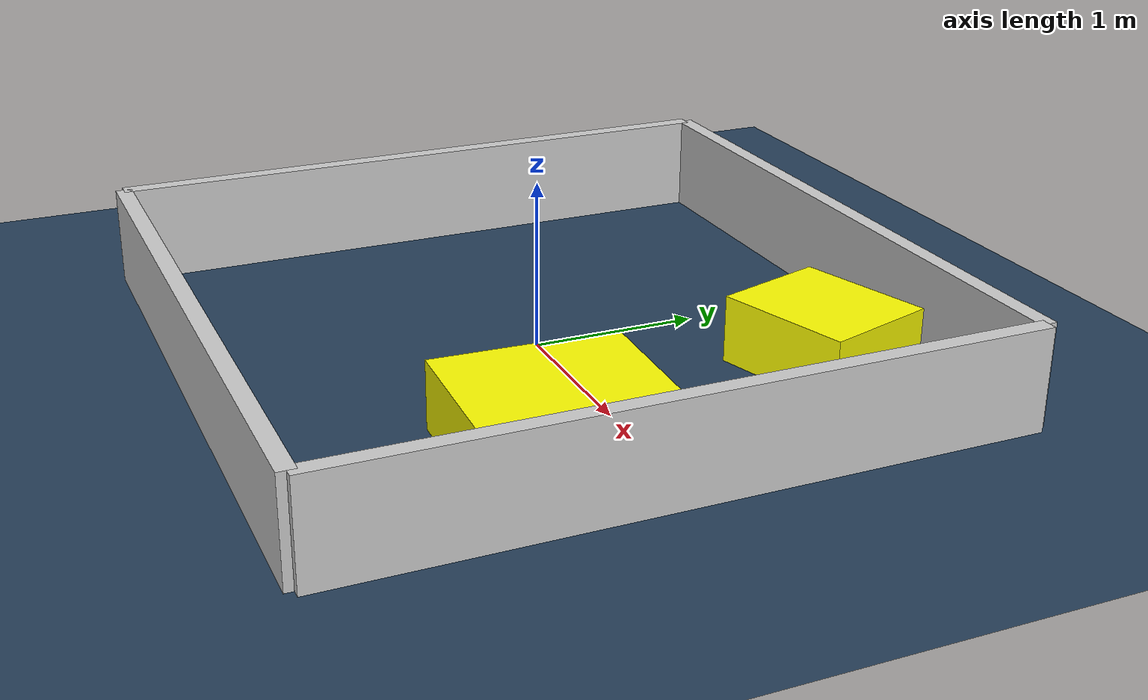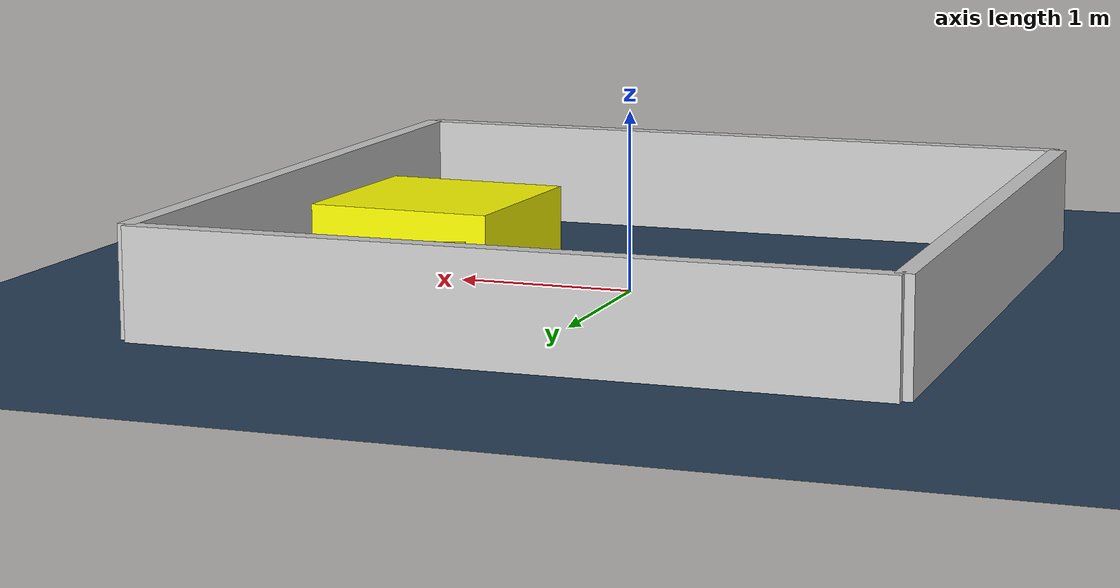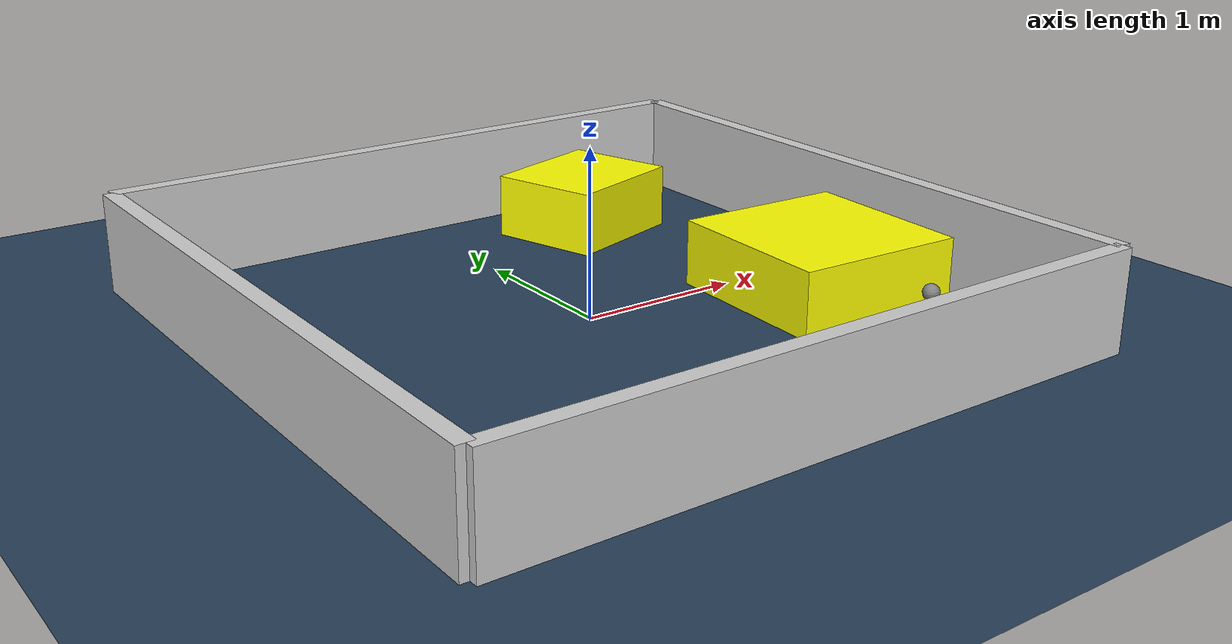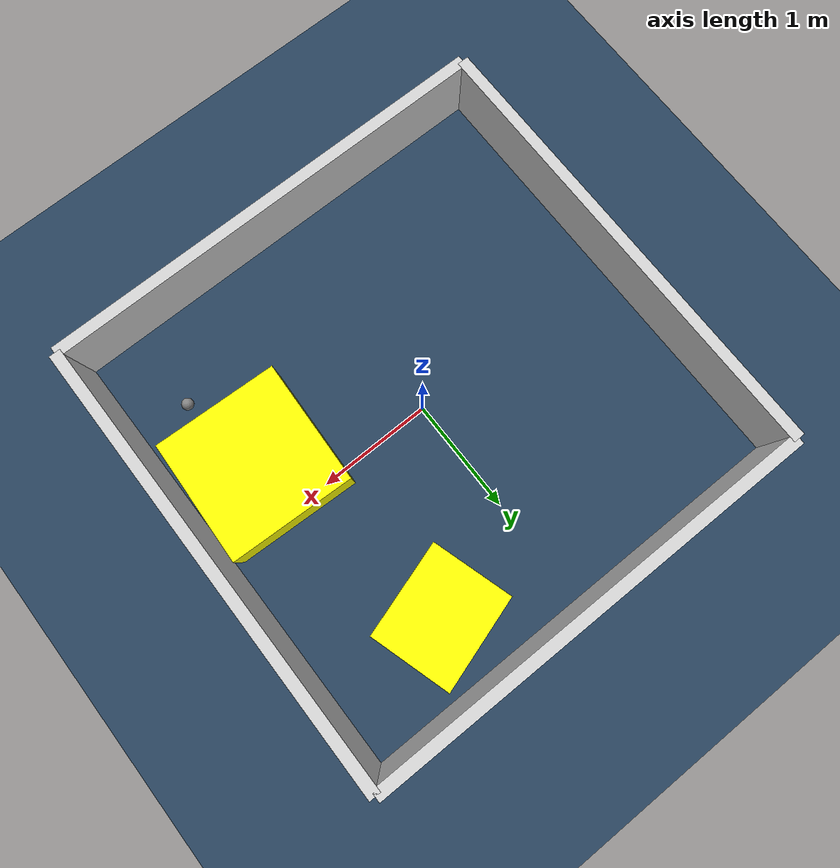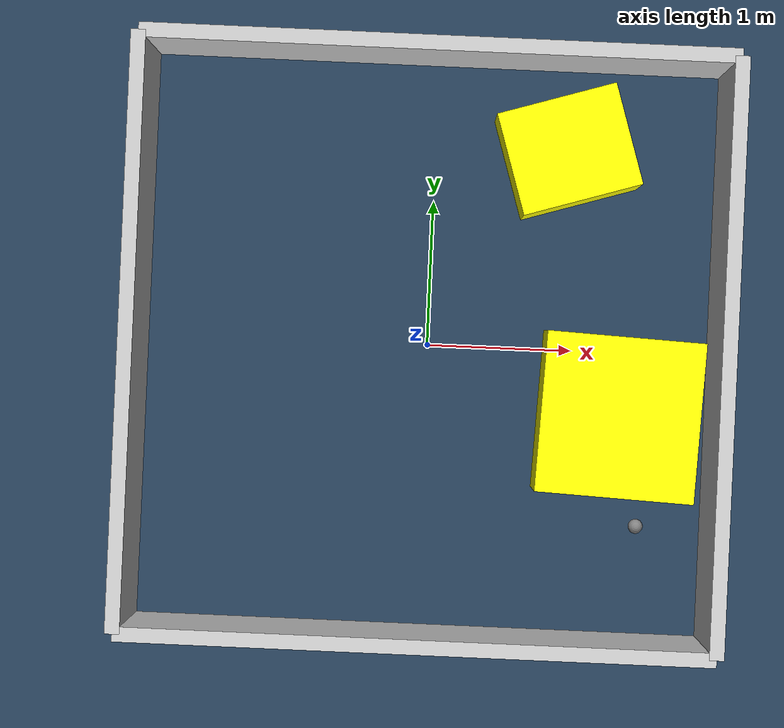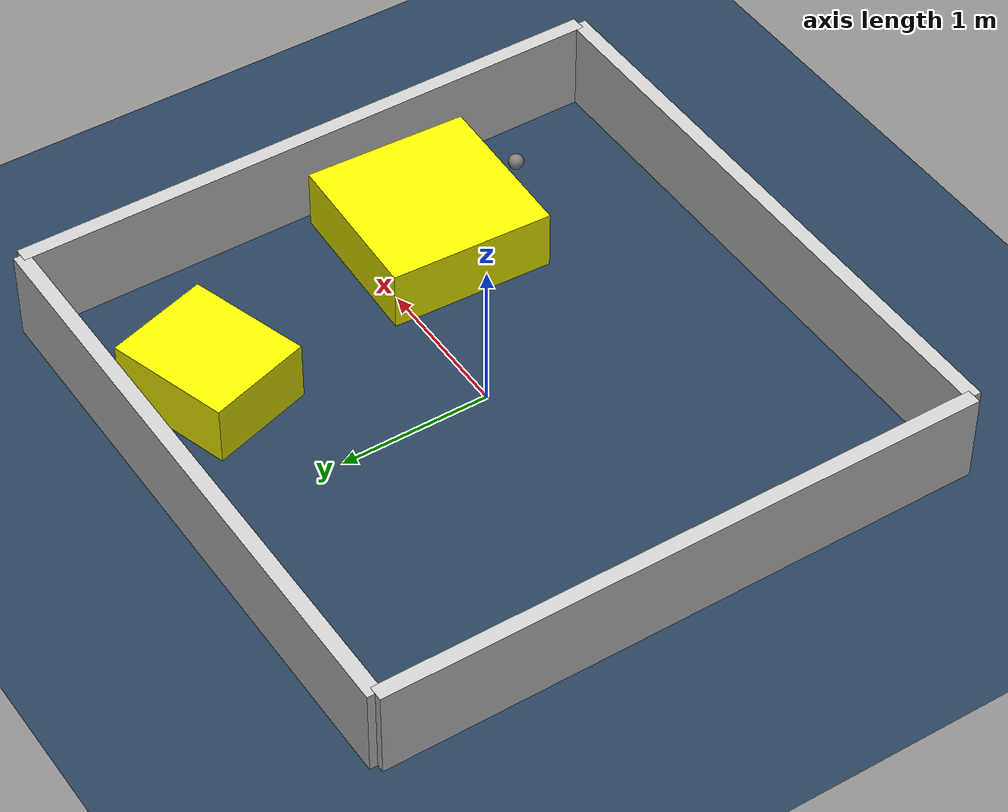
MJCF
<?xml version="1.0" ?>
<mujoco model="generated_environment">
  <option timestep="0.01" integrator="RK4" cone="elliptic"/>
  <default>
    <geom density="1"/>
  </default>
  <asset>
    <texture builtin="gradient" height="3072" rgb1="0.3 0.5 0.7" rgb2="0 0 0" type="skybox" width="512"/>
    <texture builtin="checker" height="300" mark="edge" markrgb="0.8 0.8 0.8" name="groundplane" rgb1="0.2 0.3 0.4" rgb2="0.1 0.2 0.3" type="2d" width="300"/>
    <material name="groundplane" reflectance="0.2" texrepeat="5 5" texture="groundplane" texuniform="true"/>
    <material name="robot" rgba="0.0 1.0 0.0 1"/>
  </asset>
  <worldbody>
    <light dir="0 0 -1" directional="true" pos="0 0 1.5"/>
    <geom condim="4" friction="1.0 0.005 0.001" material="groundplane" name="floor" size="0 0 0.05" type="plane"/>
    <body name="walls">
      <geom name="wall_1" condim="4" pos="-2.0 0.0 0.3" rgba="0.800000011920929 0.800000011920929 0.800000011920929 1.0" size="0.05 2.0 0.3" type="box"/>
      <geom name="wall_2" condim="4" pos="2.0 0.0 0.3" rgba="0.800000011920929 0.800000011920929 0.800000011920929 1.0" size="0.05 2.0 0.3" type="box"/>
      <geom name="wall_3" condim="4" pos="0.0 -2.0 0.3" rgba="0.800000011920929 0.800000011920929 0.800000011920929 1.0" size="2.0 0.05 0.3" type="box"/>
      <geom name="wall_4" condim="4" pos="0.0 2.0 0.3" rgba="0.800000011920929 0.800000011920929 0.800000011920929 1.0" size="2.0 0.05 0.3" type="box"/>
    </body>
    <body name="robot">
      <joint name="joint_x" type="slide" pos="0 0 0" axis="1 0 0"/>
      <joint name="joint_y" type="slide" pos="0 0 0" axis="0 1 0"/>
      <geom name="robot" type="sphere" pos="1.478963925389845 -1.1801904447041818 0.2" size="0.05" mass="5." friction="1.0 0.005 0.0001" condim="4"/>
      <site name="sensor_ball"/>
    </body>
    <body name="obstacle_1_movable">
      <geom name="obstacle_1_movable" condim="4" pos="1.3226360269522444 -0.4313961766507224 0.2" euler="0 0 267.55047138549315" friction="1.0 0.005 0.001" rgba="1 1 0 1" size="0.5454554239132892 0.5397961555716637 0.2" type="box" mass="0.1"/>
      <joint type="free"/>
    </body>
    <body name="obstacle_2_movable">
      <geom name="obstacle_2_movable" condim="4" pos="0.9028245792511806 1.3618601431917676 0.2" euler="0 0 197.18253134056337" friction="1.0 0.005 0.001" rgba="1 1 0 1" size="0.41595568708525654 0.3543537018467642 0.2" type="box" mass="0.1"/>
      <joint type="free"/>
    </body>
  </worldbody>
  <actuator>
    <motor name="actuator_x" joint="joint_x" gear="1" ctrlrange="-1 1"/>
    <motor name="actuator_y" joint="joint_y" gear="1" ctrlrange="-1 1"/>
  </actuator>
</mujoco>
